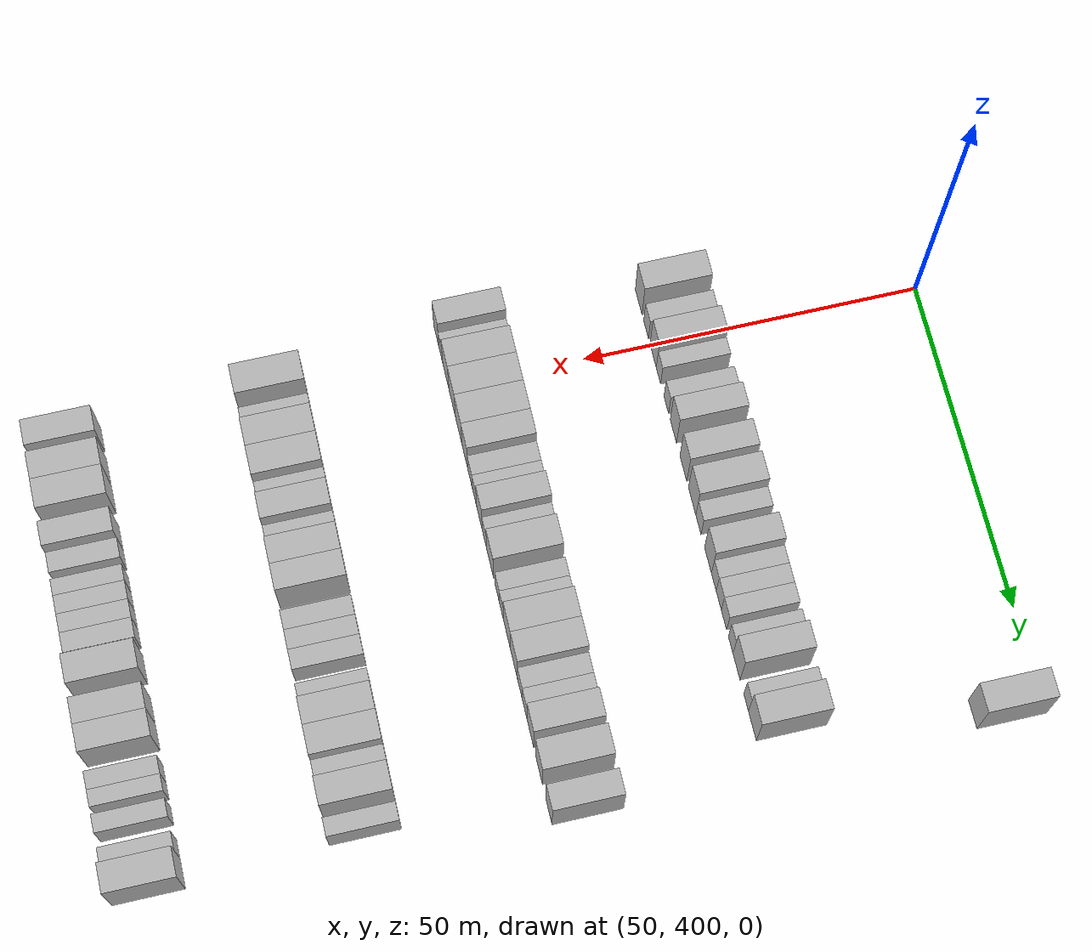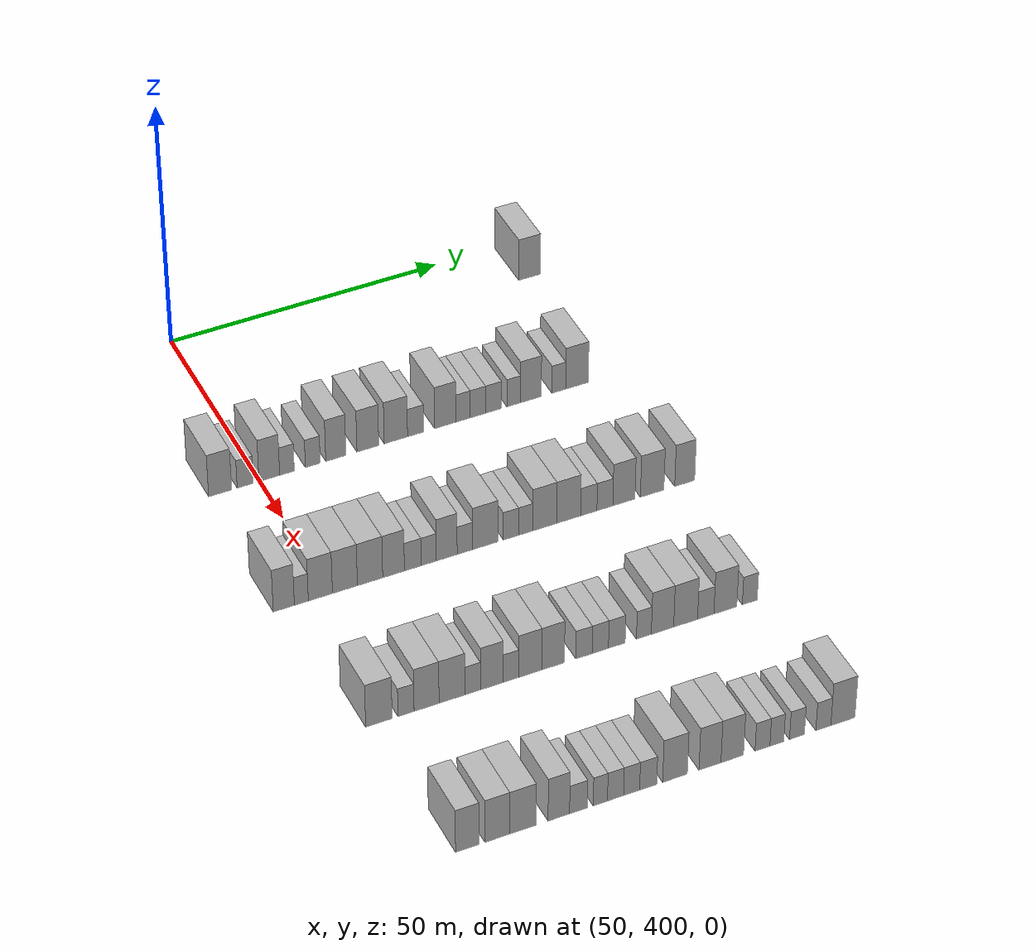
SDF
<sdf version="1.6">
 <world name="default">
  <model name="building_462">
   <static>1</static>
   <pose>55.0000 463.5031 0 0.000000 0.000000 0.000000</pose>
   <link name="link">
    <pose>0 0 4.50 0 0 0</pose>
    <collision name="collision"><geometry><box><size>10.0000 4.1961 9.0000</size></box></geometry></collision>
    <visual name="visual">
     <cast_shadows>0</cast_shadows>
     <geometry><box><size>10.0000 4.1961 9.0000</size></box></geometry>
     <material>
      <script>
       <uri>model://HANNAS_wall/materials/scripts</uri>
       <uri>model://HANNAS_wall/materials/textures</uri>
       <name>vrc/HANNAS_wall</name>
      </script>
     </material>
    </visual>
   </link>
  </model>
  <model name="building_685">
   <static>1</static>
   <pose>85.0000 392.9633 0 0.000000 0.000000 0.000000</pose>
   <link name="link">
    <pose>0 0 4.50 0 0 0</pose>
    <collision name="collision"><geometry><box><size>10.0000 4.0697 9.0000</size></box></geometry></collision>
    <visual name="visual">
     <cast_shadows>0</cast_shadows>
     <geometry><box><size>10.0000 4.0697 9.0000</size></box></geometry>
     <material>
      <script>
       <uri>model://HANNAS_wall/materials/scripts</uri>
       <uri>model://HANNAS_wall/materials/textures</uri>
       <name>vrc/HANNAS_wall</name>
      </script>
     </material>
    </visual>
   </link>
  </model>
  <model name="building_686">
   <static>1</static>
   <pose>85.0000 397.4425 0 0.000000 0.000000 0.000000</pose>
   <link name="link">
    <pose>0 0 3.00 0 0 0</pose>
    <collision name="collision"><geometry><box><size>10.0000 2.8887 6.0000</size></box></geometry></collision>
    <visual name="visual">
     <cast_shadows>0</cast_shadows>
     <geometry><box><size>10.0000 2.8887 6.0000</size></box></geometry>
     <material>
      <script>
       <uri>model://HANNAS_wall/materials/scripts</uri>
       <uri>model://HANNAS_wall/materials/textures</uri>
       <name>vrc/HANNAS_wall</name>
      </script>
     </material>
    </visual>
   </link>
  </model>
  <model name="building_687">
   <static>1</static>
   <pose>85.0000 401.7424 0 0.000000 0.000000 0.000000</pose>
   <link name="link">
    <pose>0 0 4.50 0 0 0</pose>
    <collision name="collision"><geometry><box><size>10.0000 3.7111 9.0000</size></box></geometry></collision>
    <visual name="visual">
     <cast_shadows>0</cast_shadows>
     <geometry><box><size>10.0000 3.7111 9.0000</size></box></geometry>
     <material>
      <script>
       <uri>model://HANNAS_wall/materials/scripts</uri>
       <uri>model://HANNAS_wall/materials/textures</uri>
       <name>vrc/HANNAS_wall</name>
      </script>
     </material>
    </visual>
   </link>
  </model>
  <model name="building_688">
   <static>1</static>
   <pose>85.0000 404.9076 0 0.000000 0.000000 0.000000</pose>
   <link name="link">
    <pose>0 0 3.00 0 0 0</pose>
    <collision name="collision"><geometry><box><size>10.0000 2.6192 6.0000</size></box></geometry></collision>
    <visual name="visual">
     <cast_shadows>0</cast_shadows>
     <geometry><box><size>10.0000 2.6192 6.0000</size></box></geometry>
     <material>
      <script>
       <uri>model://HANNAS_wall/materials/scripts</uri>
       <uri>model://HANNAS_wall/materials/textures</uri>
       <name>vrc/HANNAS_wall</name>
      </script>
     </material>
    </visual>
   </link>
  </model>
  <model name="building_689">
   <static>1</static>
   <pose>85.0000 409.5580 0 0.000000 0.000000 0.000000</pose>
   <link name="link">
    <pose>0 0 3.00 0 0 0</pose>
    <collision name="collision"><geometry><box><size>10.0000 2.6816 6.0000</size></box></geometry></collision>
    <visual name="visual">
     <cast_shadows>0</cast_shadows>
     <geometry><box><size>10.0000 2.6816 6.0000</size></box></geometry>
     <material>
      <script>
       <uri>model://HANNAS_wall/materials/scripts</uri>
       <uri>model://HANNAS_wall/materials/textures</uri>
       <name>vrc/HANNAS_wall</name>
      </script>
     </material>
    </visual>
   </link>
  </model>
  <model name="building_690">
   <static>1</static>
   <pose>85.0000 413.7264 0 0.000000 0.000000 0.000000</pose>
   <link name="link">
    <pose>0 0 4.50 0 0 0</pose>
    <collision name="collision"><geometry><box><size>10.0000 3.6553 9.0000</size></box></geometry></collision>
    <visual name="visual">
     <cast_shadows>0</cast_shadows>
     <geometry><box><size>10.0000 3.6553 9.0000</size></box></geometry>
     <material>
      <script>
       <uri>model://HANNAS_wall/materials/scripts</uri>
       <uri>model://HANNAS_wall/materials/textures</uri>
       <name>vrc/HANNAS_wall</name>
      </script>
     </material>
    </visual>
   </link>
  </model>
  <model name="building_691">
   <static>1</static>
   <pose>85.0000 419.5374 0 0.000000 0.000000 0.000000</pose>
   <link name="link">
    <pose>0 0 4.50 0 0 0</pose>
    <collision name="collision"><geometry><box><size>10.0000 3.9667 9.0000</size></box></geometry></collision>
    <visual name="visual">
     <cast_shadows>0</cast_shadows>
     <geometry><box><size>10.0000 3.9667 9.0000</size></box></geometry>
     <material>
      <script>
       <uri>model://HANNAS_wall/materials/scripts</uri>
       <uri>model://HANNAS_wall/materials/textures</uri>
       <name>vrc/HANNAS_wall</name>
      </script>
     </material>
    </visual>
   </link>
  </model>
  <model name="building_692">
   <static>1</static>
   <pose>85.0000 424.6541 0 0.000000 0.000000 0.000000</pose>
   <link name="link">
    <pose>0 0 4.50 0 0 0</pose>
    <collision name="collision"><geometry><box><size>10.0000 4.2667 9.0000</size></box></geometry></collision>
    <visual name="visual">
     <cast_shadows>0</cast_shadows>
     <geometry><box><size>10.0000 4.2667 9.0000</size></box></geometry>
     <material>
      <script>
       <uri>model://HANNAS_wall/materials/scripts</uri>
       <uri>model://HANNAS_wall/materials/textures</uri>
       <name>vrc/HANNAS_wall</name>
      </script>
     </material>
    </visual>
   </link>
  </model>
  <model name="building_693">
   <static>1</static>
   <pose>85.0000 428.2716 0 0.000000 0.000000 0.000000</pose>
   <link name="link">
    <pose>0 0 3.00 0 0 0</pose>
    <collision name="collision"><geometry><box><size>10.0000 2.9683 6.0000</size></box></geometry></collision>
    <visual name="visual">
     <cast_shadows>0</cast_shadows>
     <geometry><box><size>10.0000 2.9683 6.0000</size></box></geometry>
     <material>
      <script>
       <uri>model://HANNAS_wall/materials/scripts</uri>
       <uri>model://HANNAS_wall/materials/textures</uri>
       <name>vrc/HANNAS_wall</name>
      </script>
     </material>
    </visual>
   </link>
  </model>
  <model name="building_694">
   <static>1</static>
   <pose>85.0000 433.7088 0 0.000000 0.000000 0.000000</pose>
   <link name="link">
    <pose>0 0 4.50 0 0 0</pose>
    <collision name="collision"><geometry><box><size>10.0000 3.9062 9.0000</size></box></geometry></collision>
    <visual name="visual">
     <cast_shadows>0</cast_shadows>
     <geometry><box><size>10.0000 3.9062 9.0000</size></box></geometry>
     <material>
      <script>
       <uri>model://HANNAS_wall/materials/scripts</uri>
       <uri>model://HANNAS_wall/materials/textures</uri>
       <name>vrc/HANNAS_wall</name>
      </script>
     </material>
    </visual>
   </link>
  </model>
  <model name="building_695">
   <static>1</static>
   <pose>85.0000 436.9989 0 0.000000 0.000000 0.000000</pose>
   <link name="link">
    <pose>0 0 3.00 0 0 0</pose>
    <collision name="collision"><geometry><box><size>10.0000 2.6739 6.0000</size></box></geometry></collision>
    <visual name="visual">
     <cast_shadows>0</cast_shadows>
     <geometry><box><size>10.0000 2.6739 6.0000</size></box></geometry>
     <material>
      <script>
       <uri>model://HANNAS_wall/materials/scripts</uri>
       <uri>model://HANNAS_wall/materials/textures</uri>
       <name>vrc/HANNAS_wall</name>
      </script>
     </material>
    </visual>
   </link>
  </model>
  <model name="building_696">
   <static>1</static>
   <pose>85.0000 439.7642 0 0.000000 0.000000 0.000000</pose>
   <link name="link">
    <pose>0 0 3.00 0 0 0</pose>
    <collision name="collision"><geometry><box><size>10.0000 2.8568 6.0000</size></box></geometry></collision>
    <visual name="visual">
     <cast_shadows>0</cast_shadows>
     <geometry><box><size>10.0000 2.8568 6.0000</size></box></geometry>
     <material>
      <script>
       <uri>model://HANNAS_wall/materials/scripts</uri>
       <uri>model://HANNAS_wall/materials/textures</uri>
       <name>vrc/HANNAS_wall</name>
      </script>
     </material>
    </visual>
   </link>
  </model>
  <model name="building_697">
   <static>1</static>
   <pose>85.0000 442.6653 0 0.000000 0.000000 0.000000</pose>
   <link name="link">
    <pose>0 0 3.00 0 0 0</pose>
    <collision name="collision"><geometry><box><size>10.0000 2.9454 6.0000</size></box></geometry></collision>
    <visual name="visual">
     <cast_shadows>0</cast_shadows>
     <geometry><box><size>10.0000 2.9454 6.0000</size></box></geometry>
     <material>
      <script>
       <uri>model://HANNAS_wall/materials/scripts</uri>
       <uri>model://HANNAS_wall/materials/textures</uri>
       <name>vrc/HANNAS_wall</name>
      </script>
     </material>
    </visual>
   </link>
  </model>
  <model name="building_698">
   <static>1</static>
   <pose>85.0000 446.4144 0 0.000000 0.000000 0.000000</pose>
   <link name="link">
    <pose>0 0 3.00 0 0 0</pose>
    <collision name="collision"><geometry><box><size>10.0000 2.5528 6.0000</size></box></geometry></collision>
    <visual name="visual">
     <cast_shadows>0</cast_shadows>
     <geometry><box><size>10.0000 2.5528 6.0000</size></box></geometry>
     <material>
      <script>
       <uri>model://HANNAS_wall/materials/scripts</uri>
       <uri>model://HANNAS_wall/materials/textures</uri>
       <name>vrc/HANNAS_wall</name>
      </script>
     </material>
    </visual>
   </link>
  </model>
  <model name="building_699">
   <static>1</static>
   <pose>85.0000 449.6314 0 0.000000 0.000000 0.000000</pose>
   <link name="link">
    <pose>0 0 4.50 0 0 0</pose>
    <collision name="collision"><geometry><box><size>10.0000 3.8812 9.0000</size></box></geometry></collision>
    <visual name="visual">
     <cast_shadows>0</cast_shadows>
     <geometry><box><size>10.0000 3.8812 9.0000</size></box></geometry>
     <material>
      <script>
       <uri>model://HANNAS_wall/materials/scripts</uri>
       <uri>model://HANNAS_wall/materials/textures</uri>
       <name>vrc/HANNAS_wall</name>
      </script>
     </material>
    </visual>
   </link>
  </model>
  <model name="building_700">
   <static>1</static>
   <pose>85.0000 454.8573 0 0.000000 0.000000 0.000000</pose>
   <link name="link">
    <pose>0 0 3.00 0 0 0</pose>
    <collision name="collision"><geometry><box><size>10.0000 2.5706 6.0000</size></box></geometry></collision>
    <visual name="visual">
     <cast_shadows>0</cast_shadows>
     <geometry><box><size>10.0000 2.5706 6.0000</size></box></geometry>
     <material>
      <script>
       <uri>model://HANNAS_wall/materials/scripts</uri>
       <uri>model://HANNAS_wall/materials/textures</uri>
       <name>vrc/HANNAS_wall</name>
      </script>
     </material>
    </visual>
   </link>
  </model>
  <model name="building_701">
   <static>1</static>
   <pose>85.0000 458.2749 0 0.000000 0.000000 0.000000</pose>
   <link name="link">
    <pose>0 0 4.50 0 0 0</pose>
    <collision name="collision"><geometry><box><size>10.0000 4.2647 9.0000</size></box></geometry></collision>
    <visual name="visual">
     <cast_shadows>0</cast_shadows>
     <geometry><box><size>10.0000 4.2647 9.0000</size></box></geometry>
     <material>
      <script>
       <uri>model://HANNAS_wall/materials/scripts</uri>
       <uri>model://HANNAS_wall/materials/textures</uri>
       <name>vrc/HANNAS_wall</name>
      </script>
     </material>
    </visual>
   </link>
  </model>
  <model name="building_912">
   <static>1</static>
   <pose>115.0000 391.8322 0 0.000000 0.000000 0.000000</pose>
   <link name="link">
    <pose>0 0 4.50 0 0 0</pose>
    <collision name="collision"><geometry><box><size>10.0000 3.6596 9.0000</size></box></geometry></collision>
    <visual name="visual">
     <cast_shadows>0</cast_shadows>
     <geometry><box><size>10.0000 3.6596 9.0000</size></box></geometry>
     <material>
      <script>
       <uri>model://HANNAS_wall/materials/scripts</uri>
       <uri>model://HANNAS_wall/materials/textures</uri>
       <name>vrc/HANNAS_wall</name>
      </script>
     </material>
    </visual>
   </link>
  </model>
  <model name="building_913">
   <static>1</static>
   <pose>115.0000 394.8738 0 0.000000 0.000000 0.000000</pose>
   <link name="link">
    <pose>0 0 3.00 0 0 0</pose>
    <collision name="collision"><geometry><box><size>10.0000 2.4237 6.0000</size></box></geometry></collision>
    <visual name="visual">
     <cast_shadows>0</cast_shadows>
     <geometry><box><size>10.0000 2.4237 6.0000</size></box></geometry>
     <material>
      <script>
       <uri>model://HANNAS_wall/materials/scripts</uri>
       <uri>model://HANNAS_wall/materials/textures</uri>
       <name>vrc/HANNAS_wall</name>
      </script>
     </material>
    </visual>
   </link>
  </model>
  <model name="building_914">
   <static>1</static>
   <pose>115.0000 398.1882 0 0.000000 0.000000 0.000000</pose>
   <link name="link">
    <pose>0 0 4.50 0 0 0</pose>
    <collision name="collision"><geometry><box><size>10.0000 4.2050 9.0000</size></box></geometry></collision>
    <visual name="visual">
     <cast_shadows>0</cast_shadows>
     <geometry><box><size>10.0000 4.2050 9.0000</size></box></geometry>
     <material>
      <script>
       <uri>model://HANNAS_wall/materials/scripts</uri>
       <uri>model://HANNAS_wall/materials/textures</uri>
       <name>vrc/HANNAS_wall</name>
      </script>
     </material>
    </visual>
   </link>
  </model>
  <model name="building_915">
   <static>1</static>
   <pose>115.0000 402.4729 0 0.000000 0.000000 0.000000</pose>
   <link name="link">
    <pose>0 0 4.50 0 0 0</pose>
    <collision name="collision"><geometry><box><size>10.0000 4.3644 9.0000</size></box></geometry></collision>
    <visual name="visual">
     <cast_shadows>0</cast_shadows>
     <geometry><box><size>10.0000 4.3644 9.0000</size></box></geometry>
     <material>
      <script>
       <uri>model://HANNAS_wall/materials/scripts</uri>
       <uri>model://HANNAS_wall/materials/textures</uri>
       <name>vrc/HANNAS_wall</name>
      </script>
     </material>
    </visual>
   </link>
  </model>
  <model name="building_916">
   <static>1</static>
   <pose>115.0000 406.8771 0 0.000000 0.000000 0.000000</pose>
   <link name="link">
    <pose>0 0 4.50 0 0 0</pose>
    <collision name="collision"><geometry><box><size>10.0000 4.4441 9.0000</size></box></geometry></collision>
    <visual name="visual">
     <cast_shadows>0</cast_shadows>
     <geometry><box><size>10.0000 4.4441 9.0000</size></box></geometry>
     <material>
      <script>
       <uri>model://HANNAS_wall/materials/scripts</uri>
       <uri>model://HANNAS_wall/materials/textures</uri>
       <name>vrc/HANNAS_wall</name>
      </script>
     </material>
    </visual>
   </link>
  </model>
  <model name="building_917">
   <static>1</static>
   <pose>115.0000 411.0091 0 0.000000 0.000000 0.000000</pose>
   <link name="link">
    <pose>0 0 4.50 0 0 0</pose>
    <collision name="collision"><geometry><box><size>10.0000 3.8199 9.0000</size></box></geometry></collision>
    <visual name="visual">
     <cast_shadows>0</cast_shadows>
     <geometry><box><size>10.0000 3.8199 9.0000</size></box></geometry>
     <material>
      <script>
       <uri>model://HANNAS_wall/materials/scripts</uri>
       <uri>model://HANNAS_wall/materials/textures</uri>
       <name>vrc/HANNAS_wall</name>
      </script>
     </material>
    </visual>
   </link>
  </model>
  <model name="building_918">
   <static>1</static>
   <pose>115.0000 414.4009 0 0.000000 0.000000 0.000000</pose>
   <link name="link">
    <pose>0 0 3.00 0 0 0</pose>
    <collision name="collision"><geometry><box><size>10.0000 2.9637 6.0000</size></box></geometry></collision>
    <visual name="visual">
     <cast_shadows>0</cast_shadows>
     <geometry><box><size>10.0000 2.9637 6.0000</size></box></geometry>
     <material>
      <script>
       <uri>model://HANNAS_wall/materials/scripts</uri>
       <uri>model://HANNAS_wall/materials/textures</uri>
       <name>vrc/HANNAS_wall</name>
      </script>
     </material>
    </visual>
   </link>
  </model>
  <model name="building_919">
   <static>1</static>
   <pose>115.0000 417.2352 0 0.000000 0.000000 0.000000</pose>
   <link name="link">
    <pose>0 0 3.00 0 0 0</pose>
    <collision name="collision"><geometry><box><size>10.0000 2.7050 6.0000</size></box></geometry></collision>
    <visual name="visual">
     <cast_shadows>0</cast_shadows>
     <geometry><box><size>10.0000 2.7050 6.0000</size></box></geometry>
     <material>
      <script>
       <uri>model://HANNAS_wall/materials/scripts</uri>
       <uri>model://HANNAS_wall/materials/textures</uri>
       <name>vrc/HANNAS_wall</name>
      </script>
     </material>
    </visual>
   </link>
  </model>
  <model name="building_920">
   <static>1</static>
   <pose>115.0000 420.4348 0 0.000000 0.000000 0.000000</pose>
   <link name="link">
    <pose>0 0 4.50 0 0 0</pose>
    <collision name="collision"><geometry><box><size>10.0000 3.6942 9.0000</size></box></geometry></collision>
    <visual name="visual">
     <cast_shadows>0</cast_shadows>
     <geometry><box><size>10.0000 3.6942 9.0000</size></box></geometry>
     <material>
      <script>
       <uri>model://HANNAS_wall/materials/scripts</uri>
       <uri>model://HANNAS_wall/materials/textures</uri>
       <name>vrc/HANNAS_wall</name>
      </script>
     </material>
    </visual>
   </link>
  </model>
  <model name="building_921">
   <static>1</static>
   <pose>115.0000 423.6785 0 0.000000 0.000000 0.000000</pose>
   <link name="link">
    <pose>0 0 3.00 0 0 0</pose>
    <collision name="collision"><geometry><box><size>10.0000 2.7930 6.0000</size></box></geometry></collision>
    <visual name="visual">
     <cast_shadows>0</cast_shadows>
     <geometry><box><size>10.0000 2.7930 6.0000</size></box></geometry>
     <material>
      <script>
       <uri>model://HANNAS_wall/materials/scripts</uri>
       <uri>model://HANNAS_wall/materials/textures</uri>
       <name>vrc/HANNAS_wall</name>
      </script>
     </material>
    </visual>
   </link>
  </model>
  <model name="building_922">
   <static>1</static>
   <pose>115.0000 427.3089 0 0.000000 0.000000 0.000000</pose>
   <link name="link">
    <pose>0 0 4.50 0 0 0</pose>
    <collision name="collision"><geometry><box><size>10.0000 4.4678 9.0000</size></box></geometry></collision>
    <visual name="visual">
     <cast_shadows>0</cast_shadows>
     <geometry><box><size>10.0000 4.4678 9.0000</size></box></geometry>
     <material>
      <script>
       <uri>model://HANNAS_wall/materials/scripts</uri>
       <uri>model://HANNAS_wall/materials/textures</uri>
       <name>vrc/HANNAS_wall</name>
      </script>
     </material>
    </visual>
   </link>
  </model>
  <model name="building_923">
   <static>1</static>
   <pose>115.0000 431.9098 0 0.000000 0.000000 0.000000</pose>
   <link name="link">
    <pose>0 0 3.00 0 0 0</pose>
    <collision name="collision"><geometry><box><size>10.0000 2.7339 6.0000</size></box></geometry></collision>
    <visual name="visual">
     <cast_shadows>0</cast_shadows>
     <geometry><box><size>10.0000 2.7339 6.0000</size></box></geometry>
     <material>
      <script>
       <uri>model://HANNAS_wall/materials/scripts</uri>
       <uri>model://HANNAS_wall/materials/textures</uri>
       <name>vrc/HANNAS_wall</name>
      </script>
     </material>
    </visual>
   </link>
  </model>
  <model name="building_924">
   <static>1</static>
   <pose>115.0000 434.5479 0 0.000000 0.000000 0.000000</pose>
   <link name="link">
    <pose>0 0 3.00 0 0 0</pose>
    <collision name="collision"><geometry><box><size>10.0000 2.5424 6.0000</size></box></geometry></collision>
    <visual name="visual">
     <cast_shadows>0</cast_shadows>
     <geometry><box><size>10.0000 2.5424 6.0000</size></box></geometry>
     <material>
      <script>
       <uri>model://HANNAS_wall/materials/scripts</uri>
       <uri>model://HANNAS_wall/materials/textures</uri>
       <name>vrc/HANNAS_wall</name>
      </script>
     </material>
    </visual>
   </link>
  </model>
  <model name="building_925">
   <static>1</static>
   <pose>115.0000 437.9872 0 0.000000 0.000000 0.000000</pose>
   <link name="link">
    <pose>0 0 4.50 0 0 0</pose>
    <collision name="collision"><geometry><box><size>10.0000 4.3364 9.0000</size></box></geometry></collision>
    <visual name="visual">
     <cast_shadows>0</cast_shadows>
     <geometry><box><size>10.0000 4.3364 9.0000</size></box></geometry>
     <material>
      <script>
       <uri>model://HANNAS_wall/materials/scripts</uri>
       <uri>model://HANNAS_wall/materials/textures</uri>
       <name>vrc/HANNAS_wall</name>
      </script>
     </material>
    </visual>
   </link>
  </model>
  <model name="building_926">
   <static>1</static>
   <pose>115.0000 442.3309 0 0.000000 0.000000 0.000000</pose>
   <link name="link">
    <pose>0 0 4.50 0 0 0</pose>
    <collision name="collision"><geometry><box><size>10.0000 4.3510 9.0000</size></box></geometry></collision>
    <visual name="visual">
     <cast_shadows>0</cast_shadows>
     <geometry><box><size>10.0000 4.3510 9.0000</size></box></geometry>
     <material>
      <script>
       <uri>model://HANNAS_wall/materials/scripts</uri>
       <uri>model://HANNAS_wall/materials/textures</uri>
       <name>vrc/HANNAS_wall</name>
      </script>
     </material>
    </visual>
   </link>
  </model>
  <model name="building_927">
   <static>1</static>
   <pose>115.0000 445.9961 0 0.000000 0.000000 0.000000</pose>
   <link name="link">
    <pose>0 0 3.00 0 0 0</pose>
    <collision name="collision"><geometry><box><size>10.0000 2.9794 6.0000</size></box></geometry></collision>
    <visual name="visual">
     <cast_shadows>0</cast_shadows>
     <geometry><box><size>10.0000 2.9794 6.0000</size></box></geometry>
     <material>
      <script>
       <uri>model://HANNAS_wall/materials/scripts</uri>
       <uri>model://HANNAS_wall/materials/textures</uri>
       <name>vrc/HANNAS_wall</name>
      </script>
     </material>
    </visual>
   </link>
  </model>
  <model name="building_928">
   <static>1</static>
   <pose>115.0000 448.9364 0 0.000000 0.000000 0.000000</pose>
   <link name="link">
    <pose>0 0 3.00 0 0 0</pose>
    <collision name="collision"><geometry><box><size>10.0000 2.9010 6.0000</size></box></geometry></collision>
    <visual name="visual">
     <cast_shadows>0</cast_shadows>
     <geometry><box><size>10.0000 2.9010 6.0000</size></box></geometry>
     <material>
      <script>
       <uri>model://HANNAS_wall/materials/scripts</uri>
       <uri>model://HANNAS_wall/materials/textures</uri>
       <name>vrc/HANNAS_wall</name>
      </script>
     </material>
    </visual>
   </link>
  </model>
  <model name="building_929">
   <static>1</static>
   <pose>115.0000 452.4168 0 0.000000 0.000000 0.000000</pose>
   <link name="link">
    <pose>0 0 4.50 0 0 0</pose>
    <collision name="collision"><geometry><box><size>10.0000 4.0598 9.0000</size></box></geometry></collision>
    <visual name="visual">
     <cast_shadows>0</cast_shadows>
     <geometry><box><size>10.0000 4.0598 9.0000</size></box></geometry>
     <material>
      <script>
       <uri>model://HANNAS_wall/materials/scripts</uri>
       <uri>model://HANNAS_wall/materials/textures</uri>
       <name>vrc/HANNAS_wall</name>
      </script>
     </material>
    </visual>
   </link>
  </model>
  <model name="building_930">
   <static>1</static>
   <pose>115.0000 457.6098 0 0.000000 0.000000 0.000000</pose>
   <link name="link">
    <pose>0 0 4.50 0 0 0</pose>
    <collision name="collision"><geometry><box><size>10.0000 4.3263 9.0000</size></box></geometry></collision>
    <visual name="visual">
     <cast_shadows>0</cast_shadows>
     <geometry><box><size>10.0000 4.3263 9.0000</size></box></geometry>
     <material>
      <script>
       <uri>model://HANNAS_wall/materials/scripts</uri>
       <uri>model://HANNAS_wall/materials/textures</uri>
       <name>vrc/HANNAS_wall</name>
      </script>
     </material>
    </visual>
   </link>
  </model>
  <model name="building_931">
   <static>1</static>
   <pose>115.0000 463.6169 0 0.000000 0.000000 0.000000</pose>
   <link name="link">
    <pose>0 0 4.50 0 0 0</pose>
    <collision name="collision"><geometry><box><size>10.0000 3.6880 9.0000</size></box></geometry></collision>
    <visual name="visual">
     <cast_shadows>0</cast_shadows>
     <geometry><box><size>10.0000 3.6880 9.0000</size></box></geometry>
     <material>
      <script>
       <uri>model://HANNAS_wall/materials/scripts</uri>
       <uri>model://HANNAS_wall/materials/textures</uri>
       <name>vrc/HANNAS_wall</name>
      </script>
     </material>
    </visual>
   </link>
  </model>
  <model name="building_1141">
   <static>1</static>
   <pose>145.0000 395.3007 0 0.000000 0.000000 0.000000</pose>
   <link name="link">
    <pose>0 0 4.50 0 0 0</pose>
    <collision name="collision"><geometry><box><size>10.0000 4.4816 9.0000</size></box></geometry></collision>
    <visual name="visual">
     <cast_shadows>0</cast_shadows>
     <geometry><box><size>10.0000 4.4816 9.0000</size></box></geometry>
     <material>
      <script>
       <uri>model://HANNAS_wall/materials/scripts</uri>
       <uri>model://HANNAS_wall/materials/textures</uri>
       <name>vrc/HANNAS_wall</name>
      </script>
     </material>
    </visual>
   </link>
  </model>
  <model name="building_1142">
   <static>1</static>
   <pose>145.0000 399.9100 0 0.000000 0.000000 0.000000</pose>
   <link name="link">
    <pose>0 0 3.00 0 0 0</pose>
    <collision name="collision"><geometry><box><size>10.0000 2.7371 6.0000</size></box></geometry></collision>
    <visual name="visual">
     <cast_shadows>0</cast_shadows>
     <geometry><box><size>10.0000 2.7371 6.0000</size></box></geometry>
     <material>
      <script>
       <uri>model://HANNAS_wall/materials/scripts</uri>
       <uri>model://HANNAS_wall/materials/textures</uri>
       <name>vrc/HANNAS_wall</name>
      </script>
     </material>
    </visual>
   </link>
  </model>
  <model name="building_1143">
   <static>1</static>
   <pose>145.0000 403.4108 0 0.000000 0.000000 0.000000</pose>
   <link name="link">
    <pose>0 0 4.50 0 0 0</pose>
    <collision name="collision"><geometry><box><size>10.0000 4.2644 9.0000</size></box></geometry></collision>
    <visual name="visual">
     <cast_shadows>0</cast_shadows>
     <geometry><box><size>10.0000 4.2644 9.0000</size></box></geometry>
     <material>
      <script>
       <uri>model://HANNAS_wall/materials/scripts</uri>
       <uri>model://HANNAS_wall/materials/textures</uri>
       <name>vrc/HANNAS_wall</name>
      </script>
     </material>
    </visual>
   </link>
  </model>
  <model name="building_1144">
   <static>1</static>
   <pose>145.0000 407.7529 0 0.000000 0.000000 0.000000</pose>
   <link name="link">
    <pose>0 0 4.50 0 0 0</pose>
    <collision name="collision"><geometry><box><size>10.0000 4.4198 9.0000</size></box></geometry></collision>
    <visual name="visual">
     <cast_shadows>0</cast_shadows>
     <geometry><box><size>10.0000 4.4198 9.0000</size></box></geometry>
     <material>
      <script>
       <uri>model://HANNAS_wall/materials/scripts</uri>
       <uri>model://HANNAS_wall/materials/textures</uri>
       <name>vrc/HANNAS_wall</name>
      </script>
     </material>
    </visual>
   </link>
  </model>
  <model name="building_1145">
   <static>1</static>
   <pose>145.0000 411.3054 0 0.000000 0.000000 0.000000</pose>
   <link name="link">
    <pose>0 0 3.00 0 0 0</pose>
    <collision name="collision"><geometry><box><size>10.0000 2.6853 6.0000</size></box></geometry></collision>
    <visual name="visual">
     <cast_shadows>0</cast_shadows>
     <geometry><box><size>10.0000 2.6853 6.0000</size></box></geometry>
     <material>
      <script>
       <uri>model://HANNAS_wall/materials/scripts</uri>
       <uri>model://HANNAS_wall/materials/textures</uri>
       <name>vrc/HANNAS_wall</name>
      </script>
     </material>
    </visual>
   </link>
  </model>
  <model name="building_1146">
   <static>1</static>
   <pose>145.0000 414.6188 0 0.000000 0.000000 0.000000</pose>
   <link name="link">
    <pose>0 0 4.50 0 0 0</pose>
    <collision name="collision"><geometry><box><size>10.0000 3.9416 9.0000</size></box></geometry></collision>
    <visual name="visual">
     <cast_shadows>0</cast_shadows>
     <geometry><box><size>10.0000 3.9416 9.0000</size></box></geometry>
     <material>
      <script>
       <uri>model://HANNAS_wall/materials/scripts</uri>
       <uri>model://HANNAS_wall/materials/textures</uri>
       <name>vrc/HANNAS_wall</name>
      </script>
     </material>
    </visual>
   </link>
  </model>
  <model name="building_1147">
   <static>1</static>
   <pose>145.0000 417.9312 0 0.000000 0.000000 0.000000</pose>
   <link name="link">
    <pose>0 0 3.00 0 0 0</pose>
    <collision name="collision"><geometry><box><size>10.0000 2.6830 6.0000</size></box></geometry></collision>
    <visual name="visual">
     <cast_shadows>0</cast_shadows>
     <geometry><box><size>10.0000 2.6830 6.0000</size></box></geometry>
     <material>
      <script>
       <uri>model://HANNAS_wall/materials/scripts</uri>
       <uri>model://HANNAS_wall/materials/textures</uri>
       <name>vrc/HANNAS_wall</name>
      </script>
     </material>
    </visual>
   </link>
  </model>
  <model name="building_1148">
   <static>1</static>
   <pose>145.0000 421.2799 0 0.000000 0.000000 0.000000</pose>
   <link name="link">
    <pose>0 0 4.50 0 0 0</pose>
    <collision name="collision"><geometry><box><size>10.0000 4.0145 9.0000</size></box></geometry></collision>
    <visual name="visual">
     <cast_shadows>0</cast_shadows>
     <geometry><box><size>10.0000 4.0145 9.0000</size></box></geometry>
     <material>
      <script>
       <uri>model://HANNAS_wall/materials/scripts</uri>
       <uri>model://HANNAS_wall/materials/textures</uri>
       <name>vrc/HANNAS_wall</name>
      </script>
     </material>
    </visual>
   </link>
  </model>
  <model name="building_1149">
   <static>1</static>
   <pose>145.0000 425.2431 0 0.000000 0.000000 0.000000</pose>
   <link name="link">
    <pose>0 0 4.50 0 0 0</pose>
    <collision name="collision"><geometry><box><size>10.0000 3.9117 9.0000</size></box></geometry></collision>
    <visual name="visual">
     <cast_shadows>0</cast_shadows>
     <geometry><box><size>10.0000 3.9117 9.0000</size></box></geometry>
     <material>
      <script>
       <uri>model://HANNAS_wall/materials/scripts</uri>
       <uri>model://HANNAS_wall/materials/textures</uri>
       <name>vrc/HANNAS_wall</name>
      </script>
     </material>
    </visual>
   </link>
  </model>
  <model name="building_1150">
   <static>1</static>
   <pose>145.0000 430.6291 0 0.000000 0.000000 0.000000</pose>
   <link name="link">
    <pose>0 0 3.00 0 0 0</pose>
    <collision name="collision"><geometry><box><size>10.0000 2.8603 6.0000</size></box></geometry></collision>
    <visual name="visual">
     <cast_shadows>0</cast_shadows>
     <geometry><box><size>10.0000 2.8603 6.0000</size></box></geometry>
     <material>
      <script>
       <uri>model://HANNAS_wall/materials/scripts</uri>
       <uri>model://HANNAS_wall/materials/textures</uri>
       <name>vrc/HANNAS_wall</name>
      </script>
     </material>
    </visual>
   </link>
  </model>
  <model name="building_1151">
   <static>1</static>
   <pose>145.0000 433.4990 0 0.000000 0.000000 0.000000</pose>
   <link name="link">
    <pose>0 0 3.00 0 0 0</pose>
    <collision name="collision"><geometry><box><size>10.0000 2.8796 6.0000</size></box></geometry></collision>
    <visual name="visual">
     <cast_shadows>0</cast_shadows>
     <geometry><box><size>10.0000 2.8796 6.0000</size></box></geometry>
     <material>
      <script>
       <uri>model://HANNAS_wall/materials/scripts</uri>
       <uri>model://HANNAS_wall/materials/textures</uri>
       <name>vrc/HANNAS_wall</name>
      </script>
     </material>
    </visual>
   </link>
  </model>
  <model name="building_1152">
   <static>1</static>
   <pose>145.0000 436.4073 0 0.000000 0.000000 0.000000</pose>
   <link name="link">
    <pose>0 0 3.00 0 0 0</pose>
    <collision name="collision"><geometry><box><size>10.0000 2.9371 6.0000</size></box></geometry></collision>
    <visual name="visual">
     <cast_shadows>0</cast_shadows>
     <geometry><box><size>10.0000 2.9371 6.0000</size></box></geometry>
     <material>
      <script>
       <uri>model://HANNAS_wall/materials/scripts</uri>
       <uri>model://HANNAS_wall/materials/textures</uri>
       <name>vrc/HANNAS_wall</name>
      </script>
     </material>
    </visual>
   </link>
  </model>
  <model name="building_1153">
   <static>1</static>
   <pose>145.0000 441.1917 0 0.000000 0.000000 0.000000</pose>
   <link name="link">
    <pose>0 0 3.00 0 0 0</pose>
    <collision name="collision"><geometry><box><size>10.0000 2.6317 6.0000</size></box></geometry></collision>
    <visual name="visual">
     <cast_shadows>0</cast_shadows>
     <geometry><box><size>10.0000 2.6317 6.0000</size></box></geometry>
     <material>
      <script>
       <uri>model://HANNAS_wall/materials/scripts</uri>
       <uri>model://HANNAS_wall/materials/textures</uri>
       <name>vrc/HANNAS_wall</name>
      </script>
     </material>
    </visual>
   </link>
  </model>
  <model name="building_1154">
   <static>1</static>
   <pose>145.0000 444.4939 0 0.000000 0.000000 0.000000</pose>
   <link name="link">
    <pose>0 0 4.50 0 0 0</pose>
    <collision name="collision"><geometry><box><size>10.0000 3.9727 9.0000</size></box></geometry></collision>
    <visual name="visual">
     <cast_shadows>0</cast_shadows>
     <geometry><box><size>10.0000 3.9727 9.0000</size></box></geometry>
     <material>
      <script>
       <uri>model://HANNAS_wall/materials/scripts</uri>
       <uri>model://HANNAS_wall/materials/textures</uri>
       <name>vrc/HANNAS_wall</name>
      </script>
     </material>
    </visual>
   </link>
  </model>
  <model name="building_1155">
   <static>1</static>
   <pose>145.0000 448.6106 0 0.000000 0.000000 0.000000</pose>
   <link name="link">
    <pose>0 0 4.50 0 0 0</pose>
    <collision name="collision"><geometry><box><size>10.0000 4.2607 9.0000</size></box></geometry></collision>
    <visual name="visual">
     <cast_shadows>0</cast_shadows>
     <geometry><box><size>10.0000 4.2607 9.0000</size></box></geometry>
     <material>
      <script>
       <uri>model://HANNAS_wall/materials/scripts</uri>
       <uri>model://HANNAS_wall/materials/textures</uri>
       <name>vrc/HANNAS_wall</name>
      </script>
     </material>
    </visual>
   </link>
  </model>
  <model name="building_1156">
   <static>1</static>
   <pose>145.0000 452.2020 0 0.000000 0.000000 0.000000</pose>
   <link name="link">
    <pose>0 0 3.00 0 0 0</pose>
    <collision name="collision"><geometry><box><size>10.0000 2.9222 6.0000</size></box></geometry></collision>
    <visual name="visual">
     <cast_shadows>0</cast_shadows>
     <geometry><box><size>10.0000 2.9222 6.0000</size></box></geometry>
     <material>
      <script>
       <uri>model://HANNAS_wall/materials/scripts</uri>
       <uri>model://HANNAS_wall/materials/textures</uri>
       <name>vrc/HANNAS_wall</name>
      </script>
     </material>
    </visual>
   </link>
  </model>
  <model name="building_1157">
   <static>1</static>
   <pose>145.0000 455.7224 0 0.000000 0.000000 0.000000</pose>
   <link name="link">
    <pose>0 0 4.50 0 0 0</pose>
    <collision name="collision"><geometry><box><size>10.0000 4.1185 9.0000</size></box></geometry></collision>
    <visual name="visual">
     <cast_shadows>0</cast_shadows>
     <geometry><box><size>10.0000 4.1185 9.0000</size></box></geometry>
     <material>
      <script>
       <uri>model://HANNAS_wall/materials/scripts</uri>
       <uri>model://HANNAS_wall/materials/textures</uri>
       <name>vrc/HANNAS_wall</name>
      </script>
     </material>
    </visual>
   </link>
  </model>
  <model name="building_1158">
   <static>1</static>
   <pose>145.0000 460.1194 0 0.000000 0.000000 0.000000</pose>
   <link name="link">
    <pose>0 0 3.00 0 0 0</pose>
    <collision name="collision"><geometry><box><size>10.0000 2.6756 6.0000</size></box></geometry></collision>
    <visual name="visual">
     <cast_shadows>0</cast_shadows>
     <geometry><box><size>10.0000 2.6756 6.0000</size></box></geometry>
     <material>
      <script>
       <uri>model://HANNAS_wall/materials/scripts</uri>
       <uri>model://HANNAS_wall/materials/textures</uri>
       <name>vrc/HANNAS_wall</name>
      </script>
     </material>
    </visual>
   </link>
  </model>
  <model name="building_1357">
   <static>1</static>
   <pose>175.0000 396.6620 0 0.000000 0.000000 0.000000</pose>
   <link name="link">
    <pose>0 0 4.50 0 0 0</pose>
    <collision name="collision"><geometry><box><size>10.0000 3.8566 9.0000</size></box></geometry></collision>
    <visual name="visual">
     <cast_shadows>0</cast_shadows>
     <geometry><box><size>10.0000 3.8566 9.0000</size></box></geometry>
     <material>
      <script>
       <uri>model://HANNAS_wall/materials/scripts</uri>
       <uri>model://HANNAS_wall/materials/textures</uri>
       <name>vrc/HANNAS_wall</name>
      </script>
     </material>
    </visual>
   </link>
  </model>
  <model name="building_1358">
   <static>1</static>
   <pose>175.0000 401.6530 0 0.000000 0.000000 0.000000</pose>
   <link name="link">
    <pose>0 0 4.50 0 0 0</pose>
    <collision name="collision"><geometry><box><size>10.0000 4.1253 9.0000</size></box></geometry></collision>
    <visual name="visual">
     <cast_shadows>0</cast_shadows>
     <geometry><box><size>10.0000 4.1253 9.0000</size></box></geometry>
     <material>
      <script>
       <uri>model://HANNAS_wall/materials/scripts</uri>
       <uri>model://HANNAS_wall/materials/textures</uri>
       <name>vrc/HANNAS_wall</name>
      </script>
     </material>
    </visual>
   </link>
  </model>
  <model name="building_1359">
   <static>1</static>
   <pose>175.0000 405.9093 0 0.000000 0.000000 0.000000</pose>
   <link name="link">
    <pose>0 0 4.50 0 0 0</pose>
    <collision name="collision"><geometry><box><size>10.0000 4.3874 9.0000</size></box></geometry></collision>
    <visual name="visual">
     <cast_shadows>0</cast_shadows>
     <geometry><box><size>10.0000 4.3874 9.0000</size></box></geometry>
     <material>
      <script>
       <uri>model://HANNAS_wall/materials/scripts</uri>
       <uri>model://HANNAS_wall/materials/textures</uri>
       <name>vrc/HANNAS_wall</name>
      </script>
     </material>
    </visual>
   </link>
  </model>
  <model name="building_1360">
   <static>1</static>
   <pose>175.0000 411.9104 0 0.000000 0.000000 0.000000</pose>
   <link name="link">
    <pose>0 0 4.50 0 0 0</pose>
    <collision name="collision"><geometry><box><size>10.0000 3.6148 9.0000</size></box></geometry></collision>
    <visual name="visual">
     <cast_shadows>0</cast_shadows>
     <geometry><box><size>10.0000 3.6148 9.0000</size></box></geometry>
     <material>
      <script>
       <uri>model://HANNAS_wall/materials/scripts</uri>
       <uri>model://HANNAS_wall/materials/textures</uri>
       <name>vrc/HANNAS_wall</name>
      </script>
     </material>
    </visual>
   </link>
  </model>
  <model name="building_1361">
   <static>1</static>
   <pose>175.0000 415.2136 0 0.000000 0.000000 0.000000</pose>
   <link name="link">
    <pose>0 0 3.00 0 0 0</pose>
    <collision name="collision"><geometry><box><size>10.0000 2.9916 6.0000</size></box></geometry></collision>
    <visual name="visual">
     <cast_shadows>0</cast_shadows>
     <geometry><box><size>10.0000 2.9916 6.0000</size></box></geometry>
     <material>
      <script>
       <uri>model://HANNAS_wall/materials/scripts</uri>
       <uri>model://HANNAS_wall/materials/textures</uri>
       <name>vrc/HANNAS_wall</name>
      </script>
     </material>
    </visual>
   </link>
  </model>
  <model name="building_1362">
   <static>1</static>
   <pose>175.0000 418.9128 0 0.000000 0.000000 0.000000</pose>
   <link name="link">
    <pose>0 0 3.00 0 0 0</pose>
    <collision name="collision"><geometry><box><size>10.0000 2.4067 6.0000</size></box></geometry></collision>
    <visual name="visual">
     <cast_shadows>0</cast_shadows>
     <geometry><box><size>10.0000 2.4067 6.0000</size></box></geometry>
     <material>
      <script>
       <uri>model://HANNAS_wall/materials/scripts</uri>
       <uri>model://HANNAS_wall/materials/textures</uri>
       <name>vrc/HANNAS_wall</name>
      </script>
     </material>
    </visual>
   </link>
  </model>
  <model name="building_1363">
   <static>1</static>
   <pose>175.0000 421.4840 0 0.000000 0.000000 0.000000</pose>
   <link name="link">
    <pose>0 0 3.00 0 0 0</pose>
    <collision name="collision"><geometry><box><size>10.0000 2.7357 6.0000</size></box></geometry></collision>
    <visual name="visual">
     <cast_shadows>0</cast_shadows>
     <geometry><box><size>10.0000 2.7357 6.0000</size></box></geometry>
     <material>
      <script>
       <uri>model://HANNAS_wall/materials/scripts</uri>
       <uri>model://HANNAS_wall/materials/textures</uri>
       <name>vrc/HANNAS_wall</name>
      </script>
     </material>
    </visual>
   </link>
  </model>
  <model name="building_1364">
   <static>1</static>
   <pose>175.0000 424.2128 0 0.000000 0.000000 0.000000</pose>
   <link name="link">
    <pose>0 0 3.00 0 0 0</pose>
    <collision name="collision"><geometry><box><size>10.0000 2.7219 6.0000</size></box></geometry></collision>
    <visual name="visual">
     <cast_shadows>0</cast_shadows>
     <geometry><box><size>10.0000 2.7219 6.0000</size></box></geometry>
     <material>
      <script>
       <uri>model://HANNAS_wall/materials/scripts</uri>
       <uri>model://HANNAS_wall/materials/textures</uri>
       <name>vrc/HANNAS_wall</name>
      </script>
     </material>
    </visual>
   </link>
  </model>
  <model name="building_1365">
   <static>1</static>
   <pose>175.0000 427.0301 0 0.000000 0.000000 0.000000</pose>
   <link name="link">
    <pose>0 0 3.00 0 0 0</pose>
    <collision name="collision"><geometry><box><size>10.0000 2.9126 6.0000</size></box></geometry></collision>
    <visual name="visual">
     <cast_shadows>0</cast_shadows>
     <geometry><box><size>10.0000 2.9126 6.0000</size></box></geometry>
     <material>
      <script>
       <uri>model://HANNAS_wall/materials/scripts</uri>
       <uri>model://HANNAS_wall/materials/textures</uri>
       <name>vrc/HANNAS_wall</name>
      </script>
     </material>
    </visual>
   </link>
  </model>
  <model name="building_1366">
   <static>1</static>
   <pose>175.0000 431.6002 0 0.000000 0.000000 0.000000</pose>
   <link name="link">
    <pose>0 0 4.50 0 0 0</pose>
    <collision name="collision"><geometry><box><size>10.0000 4.2275 9.0000</size></box></geometry></collision>
    <visual name="visual">
     <cast_shadows>0</cast_shadows>
     <geometry><box><size>10.0000 4.2275 9.0000</size></box></geometry>
     <material>
      <script>
       <uri>model://HANNAS_wall/materials/scripts</uri>
       <uri>model://HANNAS_wall/materials/textures</uri>
       <name>vrc/HANNAS_wall</name>
      </script>
     </material>
    </visual>
   </link>
  </model>
  <model name="building_1367">
   <static>1</static>
   <pose>175.0000 437.6042 0 0.000000 0.000000 0.000000</pose>
   <link name="link">
    <pose>0 0 4.50 0 0 0</pose>
    <collision name="collision"><geometry><box><size>10.0000 3.7806 9.0000</size></box></geometry></collision>
    <visual name="visual">
     <cast_shadows>0</cast_shadows>
     <geometry><box><size>10.0000 3.7806 9.0000</size></box></geometry>
     <material>
      <script>
       <uri>model://HANNAS_wall/materials/scripts</uri>
       <uri>model://HANNAS_wall/materials/textures</uri>
       <name>vrc/HANNAS_wall</name>
      </script>
     </material>
    </visual>
   </link>
  </model>
  <model name="building_1368">
   <static>1</static>
   <pose>175.0000 441.4475 0 0.000000 0.000000 0.000000</pose>
   <link name="link">
    <pose>0 0 4.50 0 0 0</pose>
    <collision name="collision"><geometry><box><size>10.0000 3.9060 9.0000</size></box></geometry></collision>
    <visual name="visual">
     <cast_shadows>0</cast_shadows>
     <geometry><box><size>10.0000 3.9060 9.0000</size></box></geometry>
     <material>
      <script>
       <uri>model://HANNAS_wall/materials/scripts</uri>
       <uri>model://HANNAS_wall/materials/textures</uri>
       <name>vrc/HANNAS_wall</name>
      </script>
     </material>
    </visual>
   </link>
  </model>
  <model name="building_1369">
   <static>1</static>
   <pose>175.0000 446.6956 0 0.000000 0.000000 0.000000</pose>
   <link name="link">
    <pose>0 0 3.00 0 0 0</pose>
    <collision name="collision"><geometry><box><size>10.0000 2.5903 6.0000</size></box></geometry></collision>
    <visual name="visual">
     <cast_shadows>0</cast_shadows>
     <geometry><box><size>10.0000 2.5903 6.0000</size></box></geometry>
     <material>
      <script>
       <uri>model://HANNAS_wall/materials/scripts</uri>
       <uri>model://HANNAS_wall/materials/textures</uri>
       <name>vrc/HANNAS_wall</name>
      </script>
     </material>
    </visual>
   </link>
  </model>
  <model name="building_1370">
   <static>1</static>
   <pose>175.0000 449.1962 0 0.000000 0.000000 0.000000</pose>
   <link name="link">
    <pose>0 0 3.00 0 0 0</pose>
    <collision name="collision"><geometry><box><size>10.0000 2.4109 6.0000</size></box></geometry></collision>
    <visual name="visual">
     <cast_shadows>0</cast_shadows>
     <geometry><box><size>10.0000 2.4109 6.0000</size></box></geometry>
     <material>
      <script>
       <uri>model://HANNAS_wall/materials/scripts</uri>
       <uri>model://HANNAS_wall/materials/textures</uri>
       <name>vrc/HANNAS_wall</name>
      </script>
     </material>
    </visual>
   </link>
  </model>
  <model name="building_1371">
   <static>1</static>
   <pose>175.0000 452.7082 0 0.000000 0.000000 0.000000</pose>
   <link name="link">
    <pose>0 0 3.00 0 0 0</pose>
    <collision name="collision"><geometry><box><size>10.0000 2.6130 6.0000</size></box></geometry></collision>
    <visual name="visual">
     <cast_shadows>0</cast_shadows>
     <geometry><box><size>10.0000 2.6130 6.0000</size></box></geometry>
     <material>
      <script>
       <uri>model://HANNAS_wall/materials/scripts</uri>
       <uri>model://HANNAS_wall/materials/textures</uri>
       <name>vrc/HANNAS_wall</name>
      </script>
     </material>
    </visual>
   </link>
  </model>
  <model name="building_1372">
   <static>1</static>
   <pose>175.0000 457.3320 0 0.000000 0.000000 0.000000</pose>
   <link name="link">
    <pose>0 0 3.00 0 0 0</pose>
    <collision name="collision"><geometry><box><size>10.0000 2.6345 6.0000</size></box></geometry></collision>
    <visual name="visual">
     <cast_shadows>0</cast_shadows>
     <geometry><box><size>10.0000 2.6345 6.0000</size></box></geometry>
     <material>
      <script>
       <uri>model://HANNAS_wall/materials/scripts</uri>
       <uri>model://HANNAS_wall/materials/textures</uri>
       <name>vrc/HANNAS_wall</name>
      </script>
     </material>
    </visual>
   </link>
  </model>
  <model name="building_1373">
   <static>1</static>
   <pose>175.0000 460.7654 0 0.000000 0.000000 0.000000</pose>
   <link name="link">
    <pose>0 0 4.50 0 0 0</pose>
    <collision name="collision"><geometry><box><size>10.0000 4.2323 9.0000</size></box></geometry></collision>
    <visual name="visual">
     <cast_shadows>0</cast_shadows>
     <geometry><box><size>10.0000 4.2323 9.0000</size></box></geometry>
     <material>
      <script>
       <uri>model://HANNAS_wall/materials/scripts</uri>
       <uri>model://HANNAS_wall/materials/textures</uri>
       <name>vrc/HANNAS_wall</name>
      </script>
     </material>
    </visual>
   </link>
  </model>
 </world>
</sdf>
